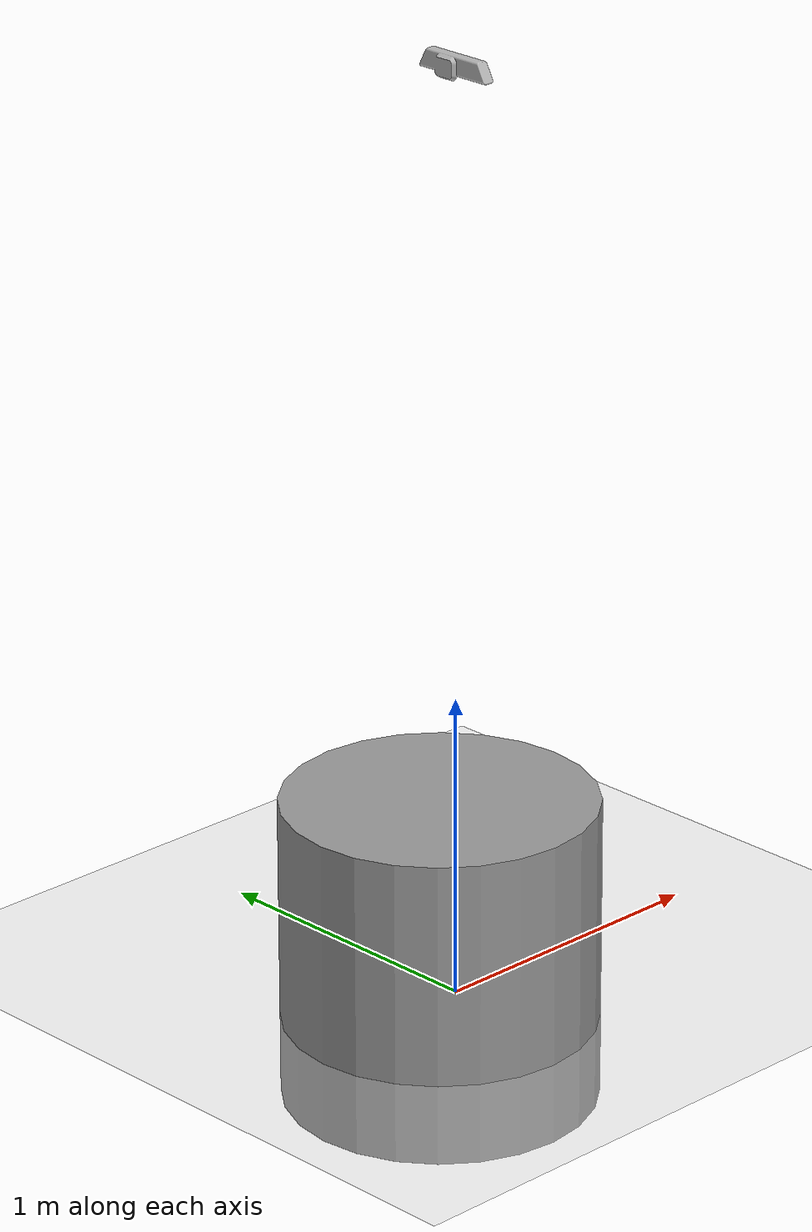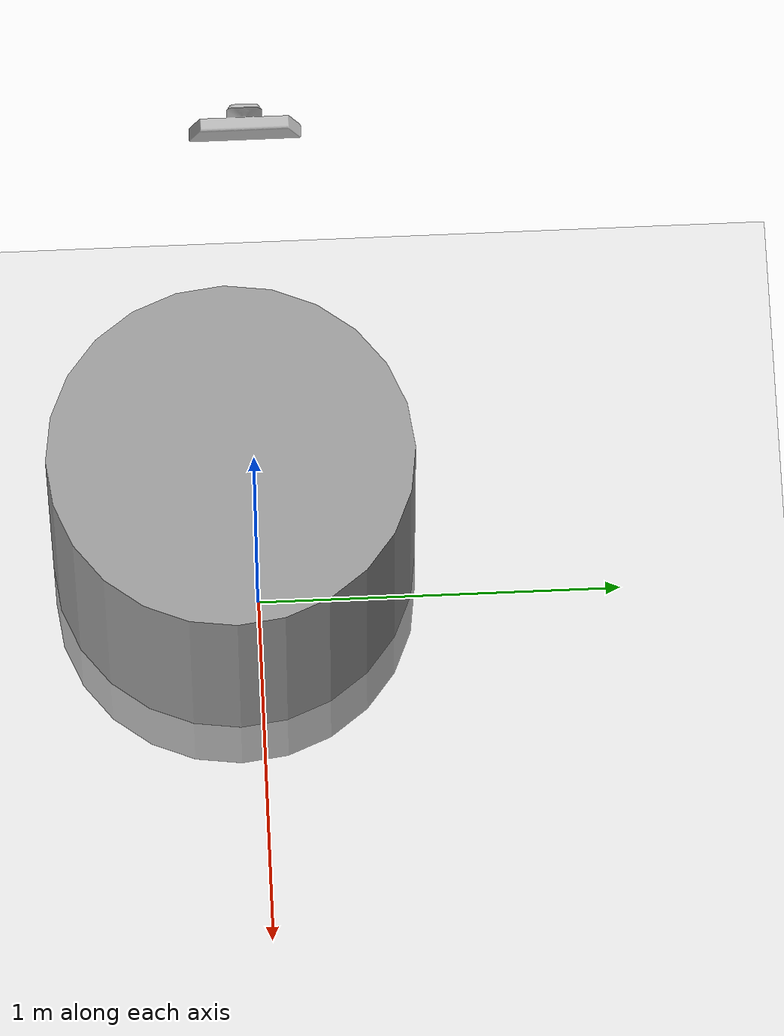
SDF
<sdf version="1.7">
 <world name="default">
  <light name="sun" type="directional">
   <pose>0 0 10 0 -0 0</pose>
   <diffuse>0.8 0.8 0.8 1</diffuse>
   <specular>0.2 0.2 0.2 1</specular>
   <attenuation>
    <range>1000</range>
    <constant>0.9</constant>
    <linear>0.01</linear>
    <quadratic>0.001</quadratic>
   </attenuation>
   <direction>-0.5 0.1 -0.9</direction>
   <spot><inner_angle>0</inner_angle><outer_angle>0</outer_angle><falloff>0</falloff></spot>
  </light>
  <model name="ground_plane">
   <static>1</static>
   <link name="link">
    <collision name="collision">
     <geometry><plane><normal>0 0 1</normal><size>100 100</size></plane></geometry>
     <surface>
      <contact><collide_bitmask>65535</collide_bitmask></contact>
      <friction><ode><mu>100</mu><mu2>50</mu2></ode></friction>
     </surface>
    </collision>
    <visual name="visual">
     <cast_shadows>0</cast_shadows>
     <geometry><plane><normal>0 0 1</normal><size>100 100</size></plane></geometry>
     <material>
      <script><uri>file://media/materials/scripts/gazebo.material</uri><name>Gazebo/Grey</name></script>
     </material>
    </visual>
   </link>
  </model>
  <model name="kinect_ros">
   <static>1</static>
   <pose>0 0 3 0 1.5707 0</pose>
   <link name="link">
    <inertial><mass>0.1</mass></inertial>
    <collision name="collision"><geometry><box><size>0.001 0.001 1</size></box></geometry></collision>
    <visual name="visual"><geometry><mesh><uri>model://kinect/meshes/kinect.dae</uri></mesh></geometry></visual>
    <sensor name="camera" type="depth">
     <update_rate>20</update_rate>
     <camera>
      <horizontal_fov>1.0472</horizontal_fov>
      <image><width>640</width><height>480</height><format>R8G8B8</format></image>
      <clip><near>0.05</near><far>3</far></clip>
     </camera>
     <plugin name="camera_controller" filename="libgazebo_ros_openni_kinect.so">
      <baseline>0.2</baseline>
      <alwaysOn>1</alwaysOn>
      <updateRate>1.0</updateRate>
      <cameraName>camera_ir</cameraName>
      <imageTopicName>/camera/color/image_raw</imageTopicName>
      <cameraInfoTopicName>/camera/color/camera_info</cameraInfoTopicName>
      <depthImageTopicName>/camera/depth/image_raw</depthImageTopicName>
      <depthImageInfoTopicName>/camera/depth/camera_info</depthImageInfoTopicName>
      <pointCloudTopicName>/camera/depth/points</pointCloudTopicName>
      <frameName>base_link</frameName>
      <pointCloudCutoff>0.5</pointCloudCutoff>
      <pointCloudCutoffMax>3.0</pointCloudCutoffMax>
      <distortionK1>0.00000001</distortionK1>
      <distortionK2>0.00000001</distortionK2>
      <distortionK3>0.00000001</distortionK3>
      <distortionT1>0.00000001</distortionT1>
      <distortionT2>0.00000001</distortionT2>
      <CxPrime>0</CxPrime>
      <Cx>0</Cx>
      <Cy>0</Cy>
      <focalLength>554.254691</focalLength>
      <hackBaseline>0</hackBaseline>
     </plugin>
    </sensor>
   </link>
  </model>
  <plugin name="ros_link_attacher_plugin" filename="libgazebo_ros_link_attacher.so"/>
  <gravity>0 0 -9.8</gravity>
  <magnetic_field>6e-06 2.3e-05 -4.2e-05</magnetic_field>
  <atmosphere type="adiabatic"/>
  <physics type="ode">
   <max_step_size>0.001</max_step_size>
   <real_time_factor>1</real_time_factor>
   <real_time_update_rate>1000</real_time_update_rate>
  </physics>
  <scene><ambient>0.4 0.4 0.4 1</ambient><background>0.7 0.7 0.7 1</background><shadows>1</shadows></scene>
  <spherical_coordinates>
   <surface_model>EARTH_WGS84</surface_model>
   <latitude_deg>0</latitude_deg>
   <longitude_deg>0</longitude_deg>
   <elevation>0</elevation>
   <heading_deg>0</heading_deg>
  </spherical_coordinates>
  <model name="unit_cylinder">
   <pose>-0.130941 -0.061871 0.229895 0 -0 0</pose>
   <link name="link">
    <inertial>
     <mass>1</mass>
     <inertia><ixx>0.145833</ixx><ixy>0</ixy><ixz>0</ixz><iyy>0.145833</iyy><iyz>0</iyz><izz>0.125</izz></inertia>
    </inertial>
    <collision name="collision">
     <geometry><cylinder><radius>0.5</radius><length>0.999999</length></cylinder></geometry>
    </collision>
    <visual name="visual">
     <geometry><cylinder><radius>0.5</radius><length>0.999999</length></cylinder></geometry>
     <material>
      <script><name>Gazebo/Grey</name><uri>file://media/materials/scripts/gazebo.material</uri></script>
     </material>
    </visual>
   </link>
  </model>
 </world>
</sdf>
